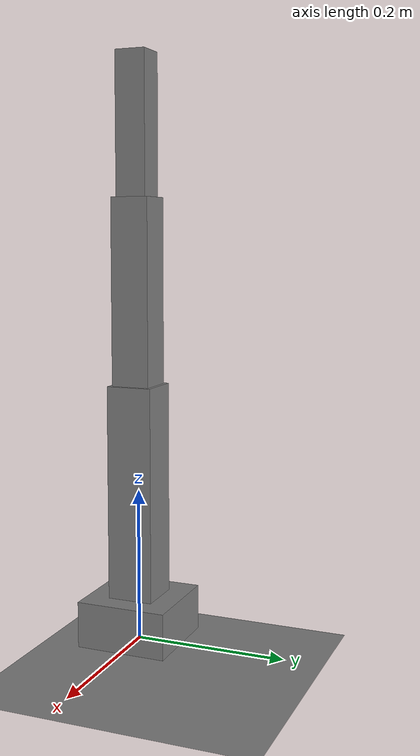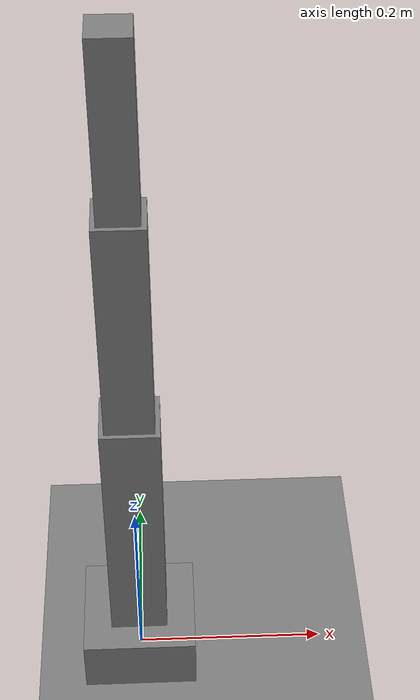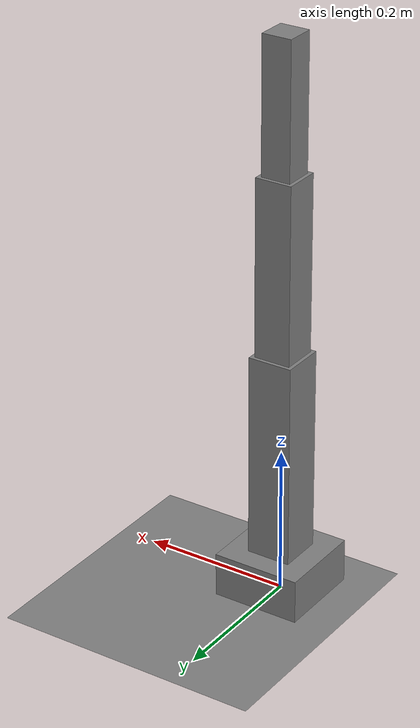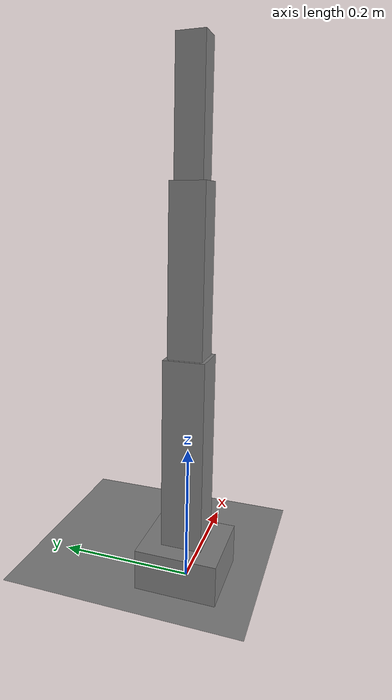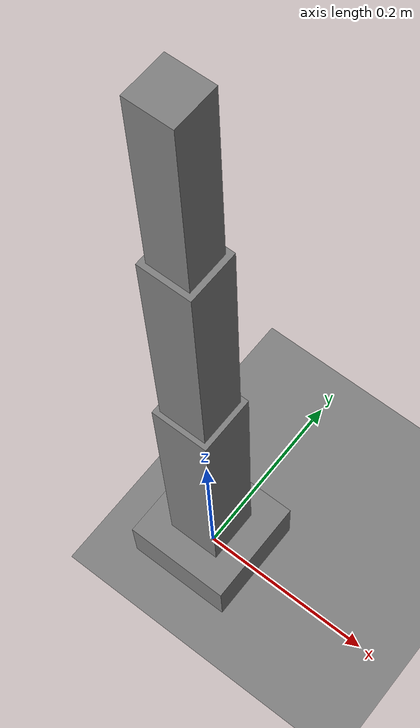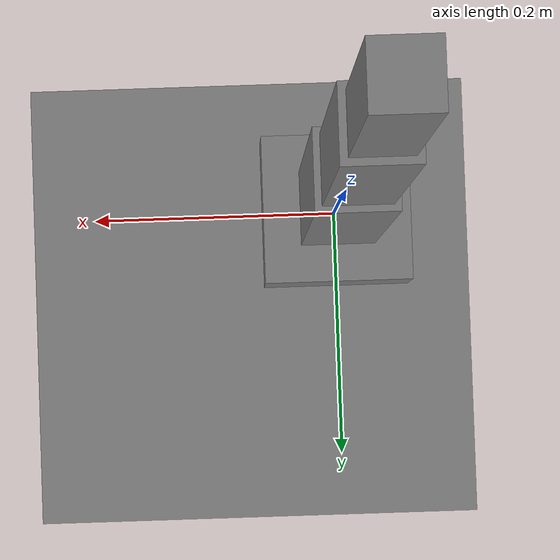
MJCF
<mujoco model="arm3">
  <compiler angle="radian"/>
  <option timestep="0.002" gravity="0 0 -9.81" integrator="RK4"/>
  <worldbody>
    <geom name="floor" type="plane" size="5 5 .1" friction="0.8 0 0"/>
    <body name="base" pos="0 0 0.03">
      <inertial pos="0 0 0" mass="2.3328" diaginertia="0.0034992 0.0034992 0.00559872"/>
      <geom name="g_base" type="box" size="0.06 0.06 0.03" friction="0.8 0 0"/>
      <body name="link1" pos="0 0 0.17">
        <inertial pos="0 0 0" mass="2.7216" diaginertia="0.0185976 0.0185976 0.00163296"/>
        <joint name="j_link1" type="hinge" axis="0 0 1" pos="0 0 -0.14" range="-2.967 2.967" damping="0.12" frictionloss="0.02"/>
        <geom name="g_link1" type="box" size="0.03 0.03 0.14" friction="0.8 0 0"/>
        <body name="link2" pos="0 0 0.26">
          <inertial pos="0 0 0" mass="1.62" diaginertia="0.0081135 0.0081135 0.000675"/>
          <joint name="j_link2" type="hinge" axis="0 1 0" pos="0 0 -0.12" range="-1.745 1.745" damping="0.1" frictionloss="0.02"/>
          <geom name="g_link2" type="box" size="0.025 0.025 0.12" friction="0.8 0 0"/>
          <body name="link3" pos="0 0 0.21">
            <inertial pos="0 0 0" mass="0.7776" diaginertia="0.0022032 0.0022032 0.00020736"/>
            <joint name="j_link3" type="hinge" axis="0 1 0" pos="0 0 -0.09" range="-2.443 2.443" damping="0.08" frictionloss="0.02"/>
            <geom name="g_link3" type="box" size="0.02 0.02 0.09" friction="0.8 0 0"/>
          </body>
        </body>
      </body>
    </body>
  </worldbody>
</mujoco>
